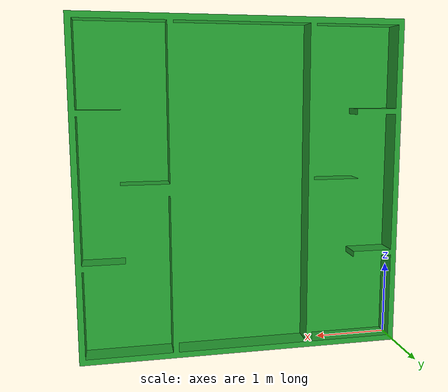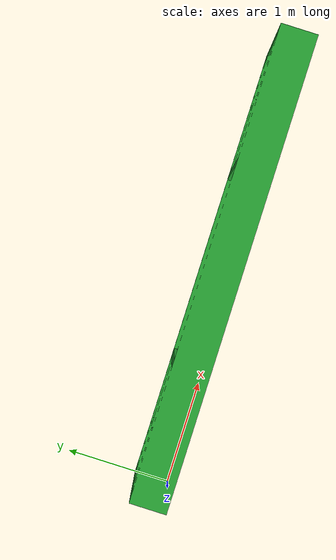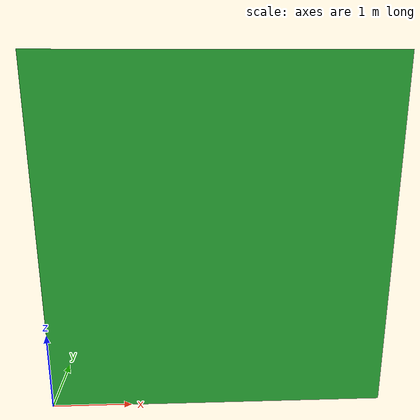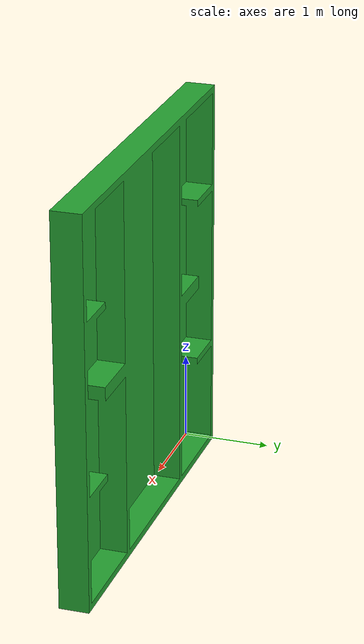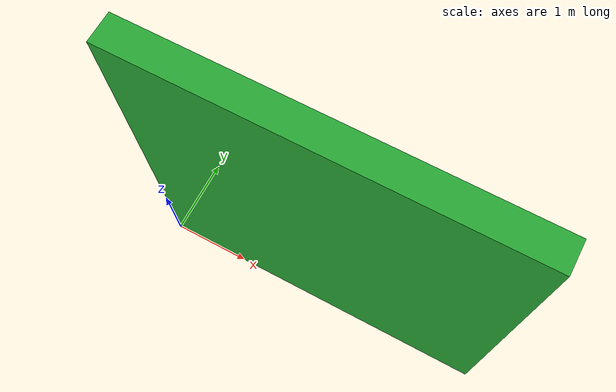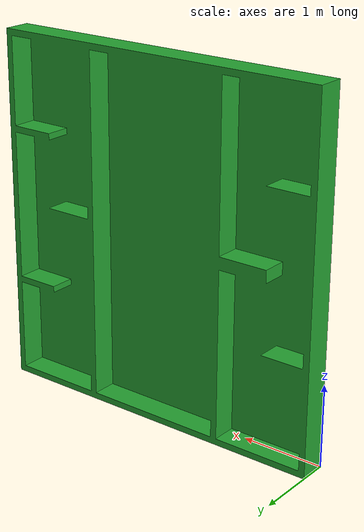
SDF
<?xml version='1.0'?>
<sdf version="1.6">

         <model name="mesh">
             <static>1</static>
             <self_collide>0</self_collide>
             <allow_auto_disable>1</allow_auto_disable>

             <frame name="object_frame">
                 <pose frame="/world">0 0 0 0 -0 0 </pose>
             </frame>

             <pose frame="/world">0 0 0 0 -0 0</pose>

             <link name="link">

                 <gravity>1</gravity>
                 <self_collide>0</self_collide>
                 <kinematic>0</kinematic>

                 <frame name="link_frame">
                     <pose frame="object_frame">0 0 0 0 -0 0</pose>
                 </frame>

                 <!-- red green blue offsets: model pivot point -->
                 <!-- 32 is just half of the voxelgrid dimension (64) (was -32 -32 -32)-->
                 <pose name="link_frame">0 0 0 0 -0 0</pose>

                 <inertial>
                     <mass>1.16</mass>
                     <inertia>
                         <!-- http://gazebosim.org/tutorials?tut=inertia&cat=build_robot -->
                         <ixx>2.25597</ixx>
                         <ixy>-0.0</ixy>
                         <ixz>0.0</ixz>
                         <iyy>4.47211</iyy>
                         <iyz>-0.00027</iyz>
                         <izz>2.2421</izz>
                     </inertia>

                     <frame name="link_inertia_frame">
                         <pose frame="link_frame">0 0 0 0 -0 0</pose>
                     </frame>

                     <pose frame="link_inertia_frame">2.11 0.11 2.18 0 0 0                     </pose>
                 </inertial>

                 <collision name="collision">
                     <!--
                         Maximum number of contacts allowed between two entities.
                         This value overrides the max_contacts element defined in physics.
                     -->
                     <max_contacts>20</max_contacts>

                     <!-- A frame of reference to which a pose is relative. -->
                     <frame name="collision_frame">
                         <pose frame="link_frame">0 0 0 0 -0 0</pose>
                     </frame>
                     <!-- A position(x,y,z) and orientation(roll, pitch yaw) with respect to the specified frame. -->
                     <pose frame="collision_frame">0 0 0 0 -0 0</pose>

                     <geometry>
                         <mesh>
                             <uri>/home/student/ros2_ws/src/eced3901/models/challenge_course/mesh.stl</uri>
                             <!-- Scaling factor applied to the mesh -->
                             <scale>1.0 1.0 1.0</scale>
                         </mesh>
                     </geometry>
                     <!-- http://sdformat.org/spec?ver=1.6&elem=collision#surface_soft_contact -->
                     <surface></surface>
                 </collision>

                 <visual name="visual">
                     <cast_shadows>1</cast_shadows>
                     <transparency>0</transparency>

                     <frame name="visual_frame">
                         <pose frame="link_frame">0 0 0 0 -0 0</pose>
                     </frame>
                     <pose frame="visual_frame">0 0 0 0 -0 0</pose>

                     <material>

                         <script>
                             <uri>file://media/materials/scripts/gazebo.material</uri>
                             <name>Gazebo/Green</name>
                         </script>
                         <shader type="vertex">
                           <normal_map>__default__</normal_map>
                         </shader>

                         <lighting>1</lighting>
 		                <ambient>0.15 0.75 0.35 1</ambient>
 		                <diffuse>0.1 0.95 0.25 1</diffuse>
 		                <specular>0.01 0.01 0.01 1</specular>
 		                <emissive>0 0 0 1</emissive>
                     </material>

                     <geometry>
                         <mesh>
                             <uri>/home/student/ros2_ws/src/eced3901/models/challenge_course/mesh.stl</uri>
                             <!-- Scaling factor applied to the mesh -->
                             <scale>1.0 1.0 1.0</scale>
                         </mesh>
                     </geometry>
                 </visual>
             </link>
         </model>
     </sdf>
